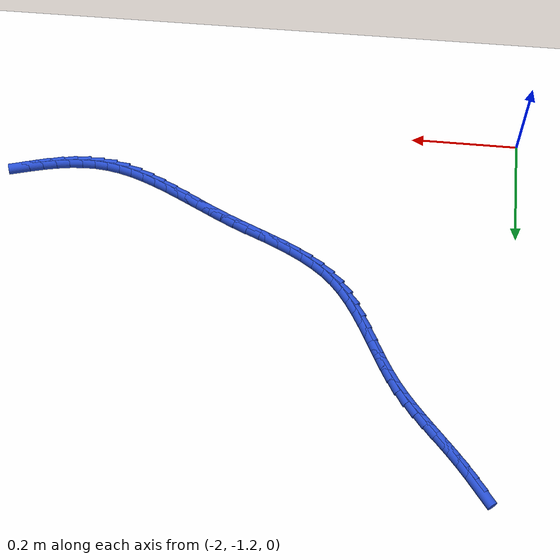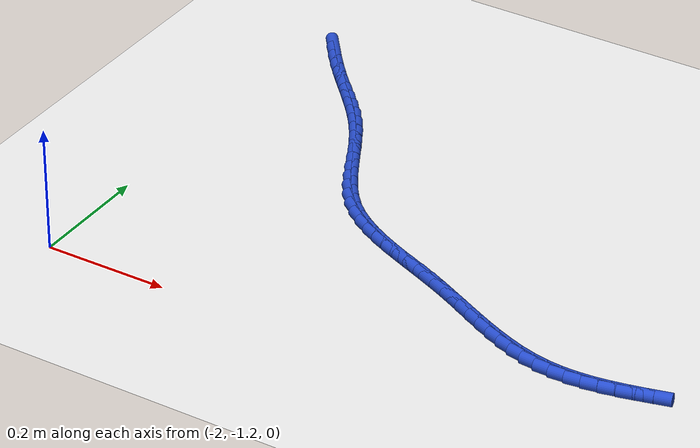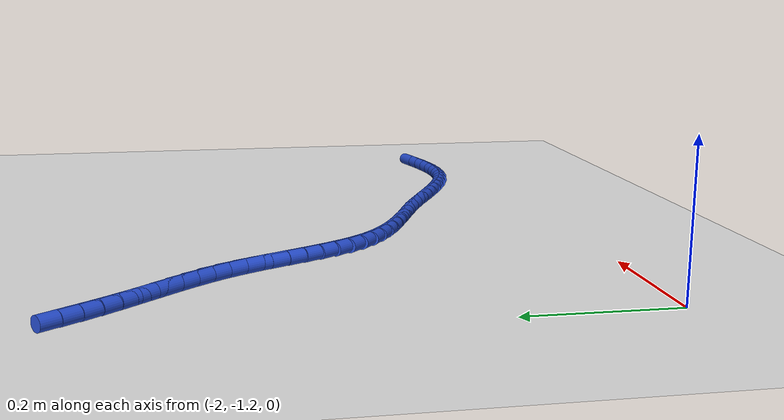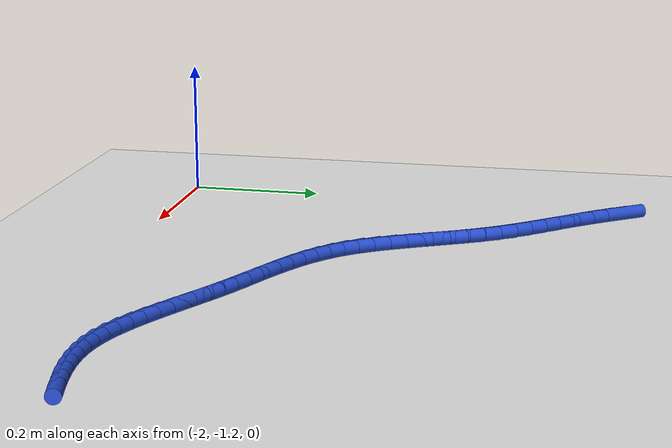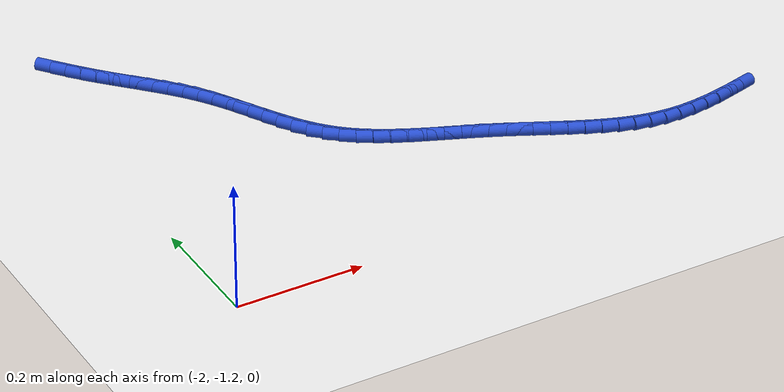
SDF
<sdf version="1.6">
 <world name="default">
  <model name="ground_plane">
   <static>1</static>
   <link name="link">
    <collision name="collision">
     <geometry><plane><normal>0 0 1</normal><size>100 100</size></plane></geometry>
     <surface><friction><ode><mu>100</mu><mu2>50</mu2></ode></friction></surface>
    </collision>
    <visual name="visual">
     <cast_shadows>0</cast_shadows>
     <geometry><plane><normal>0 0 1</normal><size>100 100</size></plane></geometry>
     <material>
      <script><uri>file://media/materials/scripts/gazebo.material</uri><name>Gazebo/WhiteGlow</name></script>
     </material>
    </visual>
   </link>
  </model>
  <model name="line">
   <link name="link_151">
    <pose>-1.9416220147298164 -0.5101035473448352 0.01 0 1.57 -0.9142098287565059</pose>
    <collision name="collision">
     <geometry><cylinder><radius>0.01</radius><length>0.08</length></cylinder></geometry>
    </collision>
    <visual name="visual">
     <material>
      <script><name>Gazebo/Blue</name><uri>file://media/materials/scripts/gazebo.material</uri></script>
     </material>
     <geometry><cylinder><radius>0.01</radius><length>0.08</length></cylinder></geometry>
    </visual>
   </link>
   <link name="link_152">
    <pose>-1.9256124721057526 -0.5308776311370131 0.01 0 1.57 -0.8843973100376937</pose>
    <collision name="collision">
     <geometry><cylinder><radius>0.01</radius><length>0.08</length></cylinder></geometry>
    </collision>
    <visual name="visual">
     <material>
      <script><name>Gazebo/Blue</name><uri>file://media/materials/scripts/gazebo.material</uri></script>
     </material>
     <geometry><cylinder><radius>0.01</radius><length>0.08</length></cylinder></geometry>
    </visual>
   </link>
   <link name="link_153">
    <pose>-1.909022883388583 -0.5511261192611544 0.01 0 1.57 -0.8575346740445741</pose>
    <collision name="collision">
     <geometry><cylinder><radius>0.01</radius><length>0.08</length></cylinder></geometry>
    </collision>
    <visual name="visual">
     <material>
      <script><name>Gazebo/Blue</name><uri>file://media/materials/scripts/gazebo.material</uri></script>
     </material>
     <geometry><cylinder><radius>0.01</radius><length>0.08</length></cylinder></geometry>
    </visual>
   </link>
   <link name="link_154">
    <pose>-1.891976787821407 -0.5708276694050015 0.01 0 1.57 -0.8360492645003414</pose>
    <collision name="collision">
     <geometry><cylinder><radius>0.01</radius><length>0.08</length></cylinder></geometry>
    </collision>
    <visual name="visual">
     <material>
      <script><name>Gazebo/Blue</name><uri>file://media/materials/scripts/gazebo.material</uri></script>
     </material>
     <geometry><cylinder><radius>0.01</radius><length>0.08</length></cylinder></geometry>
    </visual>
   </link>
   <link name="link_155">
    <pose>-1.8746271082674466 -0.590030351228542 0.01 0 1.57 -0.8272601953313733</pose>
    <collision name="collision">
     <geometry><cylinder><radius>0.01</radius><length>0.08</length></cylinder></geometry>
    </collision>
    <visual name="visual">
     <material>
      <script><name>Gazebo/Blue</name><uri>file://media/materials/scripts/gazebo.material</uri></script>
     </material>
     <geometry><cylinder><radius>0.01</radius><length>0.08</length></cylinder></geometry>
    </visual>
   </link>
   <link name="link_156">
    <pose>-1.8572075299704003 -0.6089730167422432 0.01 0 1.57 -0.8326597065837908</pose>
    <collision name="collision">
     <geometry><cylinder><radius>0.01</radius><length>0.08</length></cylinder></geometry>
    </collision>
    <visual name="visual">
     <material>
      <script><name>Gazebo/Blue</name><uri>file://media/materials/scripts/gazebo.material</uri></script>
     </material>
     <geometry><cylinder><radius>0.01</radius><length>0.08</length></cylinder></geometry>
    </visual>
   </link>
   <link name="link_157">
    <pose>-1.839965492477243 -0.6279270093008332 0.01 0 1.57 -0.8524088085433242</pose>
    <collision name="collision">
     <geometry><cylinder><radius>0.01</radius><length>0.08</length></cylinder></geometry>
    </collision>
    <visual name="visual">
     <material>
      <script><name>Gazebo/Blue</name><uri>file://media/materials/scripts/gazebo.material</uri></script>
     </material>
     <geometry><cylinder><radius>0.01</radius><length>0.08</length></cylinder></geometry>
    </visual>
   </link>
   <link name="link_158">
    <pose>-1.8231484353349467 -0.6471636722590409 0.01 0 1.57 -0.8865133215228101</pose>
    <collision name="collision">
     <geometry><cylinder><radius>0.01</radius><length>0.08</length></cylinder></geometry>
    </collision>
    <visual name="visual">
     <material>
      <script><name>Gazebo/Blue</name><uri>file://media/materials/scripts/gazebo.material</uri></script>
     </material>
     <geometry><cylinder><radius>0.01</radius><length>0.08</length></cylinder></geometry>
    </visual>
   </link>
   <link name="link_159">
    <pose>-1.8070037980904852 -0.6669543489715952 0.01 0 1.57 -0.934701057374911</pose>
    <collision name="collision">
     <geometry><cylinder><radius>0.01</radius><length>0.08</length></cylinder></geometry>
    </collision>
    <visual name="visual">
     <material>
      <script><name>Gazebo/Blue</name><uri>file://media/materials/scripts/gazebo.material</uri></script>
     </material>
     <geometry><cylinder><radius>0.01</radius><length>0.08</length></cylinder></geometry>
    </visual>
   </link>
   <link name="link_160">
    <pose>-1.791779020290831 -0.6875703827932251 0.01 0 1.57 -0.9935836263253799</pose>
    <collision name="collision">
     <geometry><cylinder><radius>0.01</radius><length>0.08</length></cylinder></geometry>
    </collision>
    <visual name="visual">
     <material>
      <script><name>Gazebo/Blue</name><uri>file://media/materials/scripts/gazebo.material</uri></script>
     </material>
     <geometry><cylinder><radius>0.01</radius><length>0.08</length></cylinder></geometry>
    </visual>
   </link>
   <link name="link_161">
    <pose>-1.7776732346695914 -0.7092318687993505 0.01 0 1.57 -1.0420444076958815</pose>
    <collision name="collision">
     <geometry><cylinder><radius>0.01</radius><length>0.08</length></cylinder></geometry>
    </collision>
    <visual name="visual">
     <material>
      <script><name>Gazebo/Blue</name><uri>file://media/materials/scripts/gazebo.material</uri></script>
     </material>
     <geometry><cylinder><radius>0.01</radius><length>0.08</length></cylinder></geometry>
    </visual>
   </link>
   <link name="link_162">
    <pose>-1.7645106748175423 -0.7317611748164731 0.01 0 1.57 -1.0712271089913632</pose>
    <collision name="collision">
     <geometry><cylinder><radius>0.01</radius><length>0.08</length></cylinder></geometry>
    </collision>
    <visual name="visual">
     <material>
      <script><name>Gazebo/Blue</name><uri>file://media/materials/scripts/gazebo.material</uri></script>
     </material>
     <geometry><cylinder><radius>0.01</radius><length>0.08</length></cylinder></geometry>
    </visual>
   </link>
   <link name="link_163">
    <pose>-1.7519402819856678 -0.7547947025482147 0.01 0 1.57 -1.0818038925899611</pose>
    <collision name="collision">
     <geometry><cylinder><radius>0.01</radius><length>0.08</length></cylinder></geometry>
    </collision>
    <visual name="visual">
     <material>
      <script><name>Gazebo/Blue</name><uri>file://media/materials/scripts/gazebo.material</uri></script>
     </material>
     <geometry><cylinder><radius>0.01</radius><length>0.08</length></cylinder></geometry>
    </visual>
   </link>
   <link name="link_164">
    <pose>-1.7396100024753751 -0.7779677981648246 0.01 0 1.57 -1.0739677472788625</pose>
    <collision name="collision">
     <geometry><cylinder><radius>0.01</radius><length>0.08</length></cylinder></geometry>
    </collision>
    <visual name="visual">
     <material>
      <script><name>Gazebo/Blue</name><uri>file://media/materials/scripts/gazebo.material</uri></script>
     </material>
     <geometry><cylinder><radius>0.01</radius><length>0.08</length></cylinder></geometry>
    </visual>
   </link>
   <link name="link_165">
    <pose>-1.7271677825880762 -0.8009158078365544 0.01 0 1.57 -1.047276021717453</pose>
    <collision name="collision">
     <geometry><cylinder><radius>0.01</radius><length>0.08</length></cylinder></geometry>
    </collision>
    <visual name="visual">
     <material>
      <script><name>Gazebo/Blue</name><uri>file://media/materials/scripts/gazebo.material</uri></script>
     </material>
     <geometry><cylinder><radius>0.01</radius><length>0.08</length></cylinder></geometry>
    </visual>
   </link>
   <link name="link_166">
    <pose>-1.7142615686251799 -0.823274077733652 0.01 0 1.57 -1.0006953265346592</pose>
    <collision name="collision">
     <geometry><cylinder><radius>0.01</radius><length>0.08</length></cylinder></geometry>
    </collision>
    <visual name="visual">
     <material>
      <script><name>Gazebo/Blue</name><uri>file://media/materials/scripts/gazebo.material</uri></script>
     </material>
     <geometry><cylinder><radius>0.01</radius><length>0.08</length></cylinder></geometry>
    </visual>
   </link>
   <link name="link_167">
    <pose>-1.7005393068880963 -0.8446779540263685 0.01 0 1.57 -0.932838969629619</pose>
    <collision name="collision">
     <geometry><cylinder><radius>0.01</radius><length>0.08</length></cylinder></geometry>
    </collision>
    <visual name="visual">
     <material>
      <script><name>Gazebo/Blue</name><uri>file://media/materials/scripts/gazebo.material</uri></script>
     </material>
     <geometry><cylinder><radius>0.01</radius><length>0.08</length></cylinder></geometry>
    </visual>
   </link>
   <link name="link_168">
    <pose>-1.6856489436782363 -0.8647627828849539 0.01 0 1.57 -0.8425182543580182</pose>
    <collision name="collision">
     <geometry><cylinder><radius>0.01</radius><length>0.08</length></cylinder></geometry>
    </collision>
    <visual name="visual">
     <material>
      <script><name>Gazebo/Blue</name><uri>file://media/materials/scripts/gazebo.material</uri></script>
     </material>
     <geometry><cylinder><radius>0.01</radius><length>0.08</length></cylinder></geometry>
    </visual>
   </link>
   <link name="link_169">
    <pose>-1.669238425564614 -0.8831639107801584 0.01 0 1.57 -0.7359922491767362</pose>
    <collision name="collision">
     <geometry><cylinder><radius>0.01</radius><length>0.08</length></cylinder></geometry>
    </collision>
    <visual name="visual">
     <material>
      <script><name>Gazebo/Blue</name><uri>file://media/materials/scripts/gazebo.material</uri></script>
     </material>
     <geometry><cylinder><radius>0.01</radius><length>0.08</length></cylinder></geometry>
    </visual>
   </link>
   <link name="link_170">
    <pose>-1.6510577944903901 -0.8996313291180025 0.01 0 1.57 -0.6391782040250092</pose>
    <collision name="collision">
     <geometry><cylinder><radius>0.01</radius><length>0.08</length></cylinder></geometry>
    </collision>
    <visual name="visual">
     <material>
      <script><name>Gazebo/Blue</name><uri>file://media/materials/scripts/gazebo.material</uri></script>
     </material>
     <geometry><cylinder><radius>0.01</radius><length>0.08</length></cylinder></geometry>
    </visual>
   </link>
   <link name="link_171">
    <pose>-1.631248703732019 -0.9143547774942098 0.01 0 1.57 -0.5593918567435362</pose>
    <collision name="collision">
     <geometry><cylinder><radius>0.01</radius><length>0.08</length></cylinder></geometry>
    </collision>
    <visual name="visual">
     <material>
      <script><name>Gazebo/Blue</name><uri>file://media/materials/scripts/gazebo.material</uri></script>
     </material>
     <geometry><cylinder><radius>0.01</radius><length>0.08</length></cylinder></geometry>
    </visual>
   </link>
   <link name="link_172">
    <pose>-1.6100466876583757 -0.9276294164587262 0.01 0 1.57 -0.49675618995189824</pose>
    <collision name="collision">
     <geometry><cylinder><radius>0.01</radius><length>0.08</length></cylinder></geometry>
    </collision>
    <visual name="visual">
     <material>
      <script><name>Gazebo/Blue</name><uri>file://media/materials/scripts/gazebo.material</uri></script>
     </material>
     <geometry><cylinder><radius>0.01</radius><length>0.08</length></cylinder></geometry>
    </visual>
   </link>
   <link name="link_173">
    <pose>-1.587687280638338 -0.9397504065614959 0.01 0 1.57 -0.45056993459026456</pose>
    <collision name="collision">
     <geometry><cylinder><radius>0.01</radius><length>0.08</length></cylinder></geometry>
    </collision>
    <visual name="visual">
     <material>
      <script><name>Gazebo/Blue</name><uri>file://media/materials/scripts/gazebo.material</uri></script>
     </material>
     <geometry><cylinder><radius>0.01</radius><length>0.08</length></cylinder></geometry>
    </visual>
   </link>
   <link name="link_174">
    <pose>-1.564406017040782 -0.9510129083524649 0.01 0 1.57 -0.4198576547118979</pose>
    <collision name="collision">
     <geometry><cylinder><radius>0.01</radius><length>0.08</length></cylinder></geometry>
    </collision>
    <visual name="visual">
     <material>
      <script><name>Gazebo/Blue</name><uri>file://media/materials/scripts/gazebo.material</uri></script>
     </material>
     <geometry><cylinder><radius>0.01</radius><length>0.08</length></cylinder></geometry>
    </visual>
   </link>
   <link name="link_175">
    <pose>-1.5404384312345836 -0.961712082381578 0.01 0 1.57 -0.40371449827461114</pose>
    <collision name="collision">
     <geometry><cylinder><radius>0.01</radius><length>0.08</length></cylinder></geometry>
    </collision>
    <visual name="visual">
     <material>
      <script><name>Gazebo/Blue</name><uri>file://media/materials/scripts/gazebo.material</uri></script>
     </material>
     <geometry><cylinder><radius>0.01</radius><length>0.08</length></cylinder></geometry>
    </visual>
   </link>
   <link name="link_176">
    <pose>-1.5160200575886187 -0.9721430891987801 0.01 0 1.57 -0.40148233802353483</pose>
    <collision name="collision">
     <geometry><cylinder><radius>0.01</radius><length>0.08</length></cylinder></geometry>
    </collision>
    <visual name="visual">
     <material>
      <script><name>Gazebo/Blue</name><uri>file://media/materials/scripts/gazebo.material</uri></script>
     </material>
     <geometry><cylinder><radius>0.01</radius><length>0.08</length></cylinder></geometry>
    </visual>
   </link>
   <link name="link_177">
    <pose>-1.491386430471765 -0.9826010893540175 0.01 0 1.57 -0.4128132785333635</pose>
    <collision name="collision">
     <geometry><cylinder><radius>0.01</radius><length>0.08</length></cylinder></geometry>
    </collision>
    <visual name="visual">
     <material>
      <script><name>Gazebo/Blue</name><uri>file://media/materials/scripts/gazebo.material</uri></script>
     </material>
     <geometry><cylinder><radius>0.01</radius><length>0.08</length></cylinder></geometry>
    </visual>
   </link>
   <link name="link_178">
    <pose>-1.4667730842528972 -0.9933812433972342 0.01 0 1.57 -0.4360690909982972</pose>
    <collision name="collision">
     <geometry><cylinder><radius>0.01</radius><length>0.08</length></cylinder></geometry>
    </collision>
    <visual name="visual">
     <material>
      <script><name>Gazebo/Blue</name><uri>file://media/materials/scripts/gazebo.material</uri></script>
     </material>
     <geometry><cylinder><radius>0.01</radius><length>0.08</length></cylinder></geometry>
    </visual>
   </link>
   <link name="link_179">
    <pose>-1.442396896856328 -1.0047402356775232 0.01 0 1.57 -0.45636686849991187</pose>
    <collision name="collision">
     <geometry><cylinder><radius>0.01</radius><length>0.08</length></cylinder></geometry>
    </collision>
    <visual name="visual">
     <material>
      <script><name>Gazebo/Blue</name><uri>file://media/materials/scripts/gazebo.material</uri></script>
     </material>
     <geometry><cylinder><radius>0.01</radius><length>0.08</length></cylinder></geometry>
    </visual>
   </link>
   <link name="link_180">
    <pose>-1.4182983588645828 -1.0165709773305405 0.01 0 1.57 -0.4655336208146317</pose>
    <collision name="collision">
     <geometry><cylinder><radius>0.01</radius><length>0.08</length></cylinder></geometry>
    </collision>
    <visual name="visual">
     <material>
      <script><name>Gazebo/Blue</name><uri>file://media/materials/scripts/gazebo.material</uri></script>
     </material>
     <geometry><cylinder><radius>0.01</radius><length>0.08</length></cylinder></geometry>
    </visual>
   </link>
   <link name="link_181">
    <pose>-1.3944208398867304 -1.0285660816233528 0.01 0 1.57 -0.46340888449352435</pose>
    <collision name="collision">
     <geometry><cylinder><radius>0.01</radius><length>0.08</length></cylinder></geometry>
    </collision>
    <visual name="visual">
     <material>
      <script><name>Gazebo/Blue</name><uri>file://media/materials/scripts/gazebo.material</uri></script>
     </material>
     <geometry><cylinder><radius>0.01</radius><length>0.08</length></cylinder></geometry>
    </visual>
   </link>
   <link name="link_182">
    <pose>-1.3707066985041783 -1.0404160767256563 0.01 0 1.57 -0.44969959678701765</pose>
    <collision name="collision">
     <geometry><cylinder><radius>0.01</radius><length>0.08</length></cylinder></geometry>
    </collision>
    <visual name="visual">
     <material>
      <script><name>Gazebo/Blue</name><uri>file://media/materials/scripts/gazebo.material</uri></script>
     </material>
     <geometry><cylinder><radius>0.01</radius><length>0.08</length></cylinder></geometry>
    </visual>
   </link>
   <link name="link_183">
    <pose>-1.347098293298331 -1.051811490807149 0.01 0 1.57 -0.42388487033465994</pose>
    <collision name="collision">
     <geometry><cylinder><radius>0.01</radius><length>0.08</length></cylinder></geometry>
    </collision>
    <visual name="visual">
     <material>
      <script><name>Gazebo/Blue</name><uri>file://media/materials/scripts/gazebo.material</uri></script>
     </material>
     <geometry><cylinder><radius>0.01</radius><length>0.08</length></cylinder></geometry>
    </visual>
   </link>
   <link name="link_184">
    <pose>-1.3235379828505949 -1.0624428520375273 0.01 0 1.57 -0.3852482006201716</pose>
    <collision name="collision">
     <geometry><cylinder><radius>0.01</radius><length>0.08</length></cylinder></geometry>
    </collision>
    <visual name="visual">
     <material>
      <script><name>Gazebo/Blue</name><uri>file://media/materials/scripts/gazebo.material</uri></script>
     </material>
     <geometry><cylinder><radius>0.01</radius><length>0.08</length></cylinder></geometry>
    </visual>
   </link>
   <link name="link_185">
    <pose>-1.2999681257423747 -1.0720006885864894 0.01 0 1.57 -0.33297173070066477</pose>
    <collision name="collision">
     <geometry><cylinder><radius>0.01</radius><length>0.08</length></cylinder></geometry>
    </collision>
    <visual name="visual">
     <material>
      <script><name>Gazebo/Blue</name><uri>file://media/materials/scripts/gazebo.material</uri></script>
     </material>
     <geometry><cylinder><radius>0.01</radius><length>0.08</length></cylinder></geometry>
    </visual>
   </link>
   <link name="link_186">
    <pose>-1.2763310805550758 -1.0801755286237318 0.01 0 1.57 -0.26632492155562354</pose>
    <collision name="collision">
     <geometry><cylinder><radius>0.01</radius><length>0.08</length></cylinder></geometry>
    </collision>
    <visual name="visual">
     <material>
      <script><name>Gazebo/Blue</name><uri>file://media/materials/scripts/gazebo.material</uri></script>
     </material>
     <geometry><cylinder><radius>0.01</radius><length>0.08</length></cylinder></geometry>
    </visual>
   </link>
   <link name="link_187">
    <pose>-1.2525692058701048 -1.086657900318952 0.01 0 1.57 -0.1849794412904986</pose>
    <collision name="collision">
     <geometry><cylinder><radius>0.01</radius><length>0.08</length></cylinder></geometry>
    </collision>
    <visual name="visual">
     <material>
      <script><name>Gazebo/Blue</name><uri>file://media/materials/scripts/gazebo.material</uri></script>
     </material>
     <geometry><cylinder><radius>0.01</radius><length>0.08</length></cylinder></geometry>
    </visual>
   </link>
   <link name="link_188">
    <pose>-1.2286248602688663 -1.091138331841848 0.01 0 1.57 -0.09094782038893592</pose>
    <collision name="collision">
     <geometry><cylinder><radius>0.01</radius><length>0.08</length></cylinder></geometry>
    </collision>
    <visual name="visual">
     <material>
      <script><name>Gazebo/Blue</name><uri>file://media/materials/scripts/gazebo.material</uri></script>
     </material>
     <geometry><cylinder><radius>0.01</radius><length>0.08</length></cylinder></geometry>
    </visual>
   </link>
   <link name="link_189">
    <pose>-1.2044450454022977 -1.093343516723452 0.01 0 1.57 -0.0006974804386088305</pose>
    <collision name="collision">
     <geometry><cylinder><radius>0.01</radius><length>0.08</length></cylinder></geometry>
    </collision>
    <visual name="visual">
     <material>
      <script><name>Gazebo/Blue</name><uri>file://media/materials/scripts/gazebo.material</uri></script>
     </material>
     <geometry><cylinder><radius>0.01</radius><length>0.08</length></cylinder></geometry>
    </visual>
   </link>
   <link name="link_190">
    <pose>-1.1800230329427492 -1.0933605506021762 0.01 0 1.57 0.07602293801780292</pose>
    <collision name="collision">
     <geometry><cylinder><radius>0.01</radius><length>0.08</length></cylinder></geometry>
    </collision>
    <visual name="visual">
     <material>
      <script><name>Gazebo/Blue</name><uri>file://media/materials/scripts/gazebo.material</uri></script>
     </material>
     <geometry><cylinder><radius>0.01</radius><length>0.08</length></cylinder></geometry>
    </visual>
   </link>
   <link name="link_191">
    <pose>-1.1553786528836012 -1.0914833946975335 0.01 0 1.57 0.13895387995393196</pose>
    <collision name="collision">
     <geometry><cylinder><radius>0.01</radius><length>0.08</length></cylinder></geometry>
    </collision>
    <visual name="visual">
     <material>
      <script><name>Gazebo/Blue</name><uri>file://media/materials/scripts/gazebo.material</uri></script>
     </material>
     <geometry><cylinder><radius>0.01</radius><length>0.08</length></cylinder></geometry>
    </visual>
   </link>
   <link name="link_192">
    <pose>-1.1305320509221901 -1.088008469280654 0.01 0 1.57 0.1885649101594973</pose>
    <collision name="collision">
     <geometry><cylinder><radius>0.01</radius><length>0.08</length></cylinder></geometry>
    </collision>
    <visual name="visual">
     <material>
      <script><name>Gazebo/Blue</name><uri>file://media/materials/scripts/gazebo.material</uri></script>
     </material>
     <geometry><cylinder><radius>0.01</radius><length>0.08</length></cylinder></geometry>
    </visual>
   </link>
   <link name="link_193">
    <pose>-1.1055033727558528 -1.083232194622668 0.01 0 1.57 0.22559190873127374</pose>
    <collision name="collision">
     <geometry><cylinder><radius>0.01</radius><length>0.08</length></cylinder></geometry>
    </collision>
    <visual name="visual">
     <material>
      <script><name>Gazebo/Blue</name><uri>file://media/materials/scripts/gazebo.material</uri></script>
     </material>
     <geometry><cylinder><radius>0.01</radius><length>0.08</length></cylinder></geometry>
    </visual>
   </link>
   <link name="link_194">
    <pose>-1.080312764081925 -1.077450990994704 0.01 0 1.57 0.25078883675566094</pose>
    <collision name="collision">
     <geometry><cylinder><radius>0.01</radius><length>0.08</length></cylinder></geometry>
    </collision>
    <visual name="visual">
     <material>
      <script><name>Gazebo/Blue</name><uri>file://media/materials/scripts/gazebo.material</uri></script>
     </material>
     <geometry><cylinder><radius>0.01</radius><length>0.08</length></cylinder></geometry>
    </visual>
   </link>
  </model>
 </world>
</sdf>
